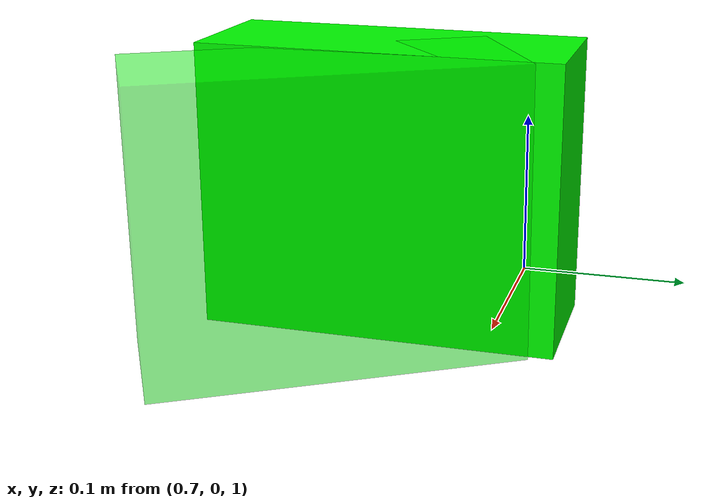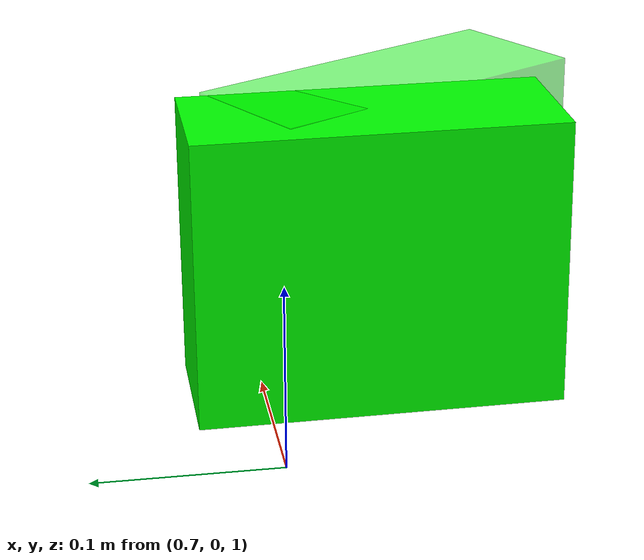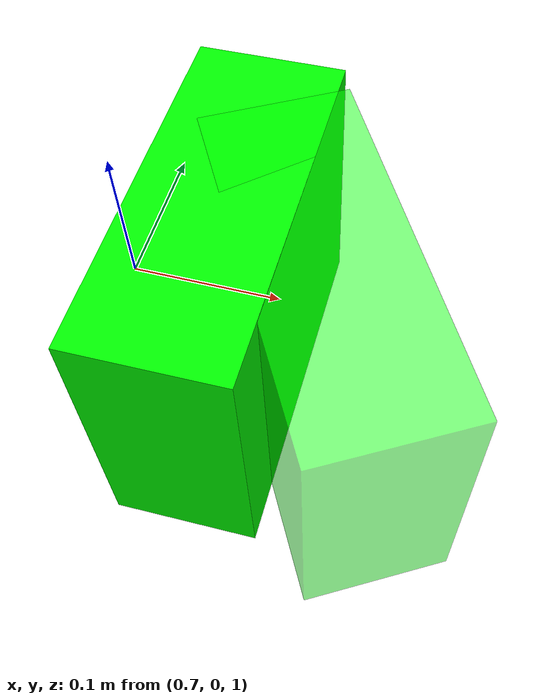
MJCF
<mujoco model="obj_setup">
  <worldbody>
    <body name="object_0" pos="0.7899660902822591 -0.05971188968363312 1.08" quat="0.9999876884441344 -0.003640889346286578 -0.003226259955834315 0.000978841980307978">
    <geom type="box" name='object_geom' size="0.04 0.1 0.08" rgba="0 1 0 1"/>
    <joint name="object_0_joint" type="free"/>
    </body>

    <body name="goal" mocap="true" pos="0.8499660902822591 -0.07971188968363312 1.08" quat="0.9659258 0 0 0.258819">
      <geom type="box" name='goal_geom' conaffinity="0" contype="0" size="0.04 0.1 0.08" rgba="0 1 0 .5"/>
    </body>

  </worldbody>
</mujoco>
